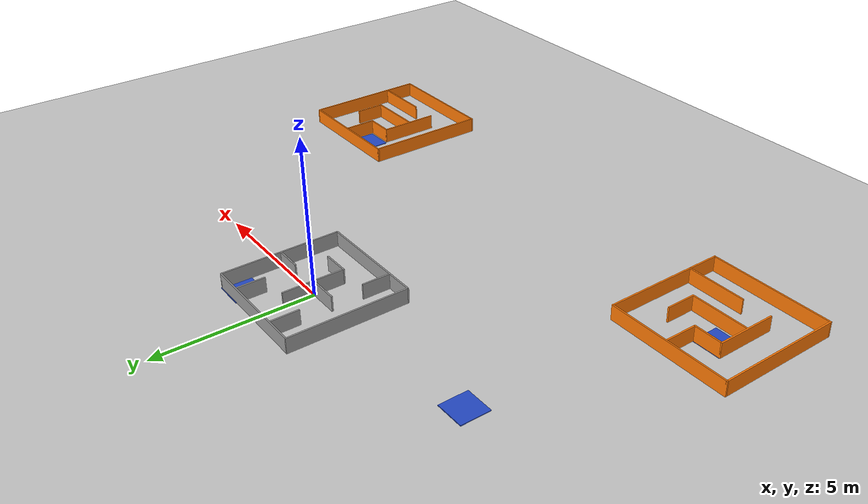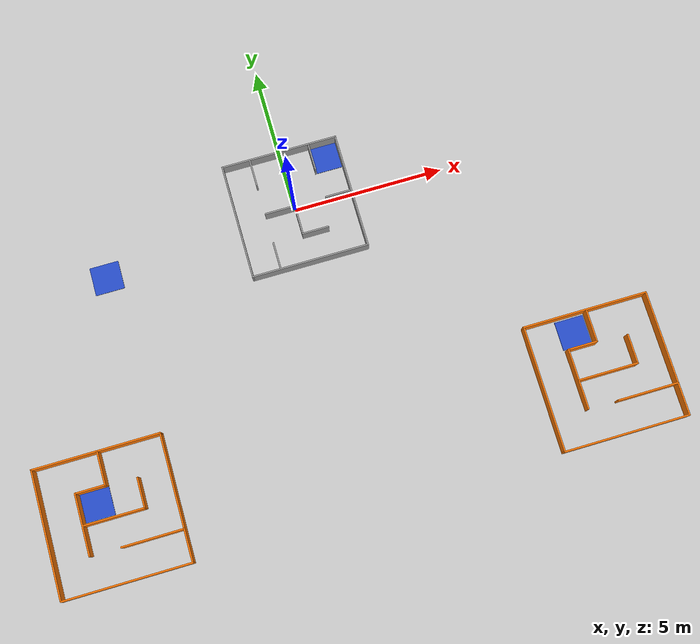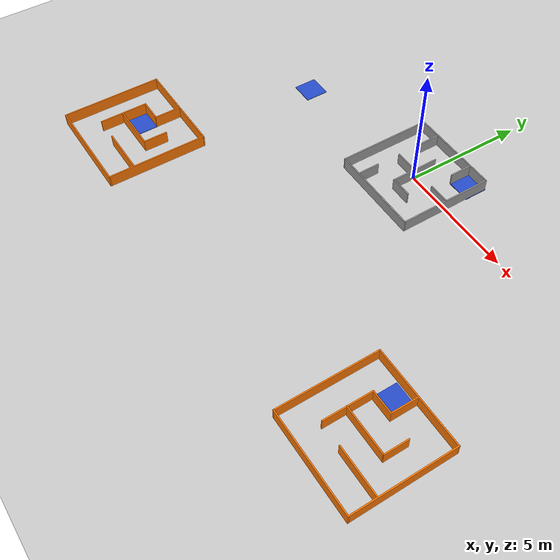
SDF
<sdf version="1.6">
 <world name="default">
  <model name="ground_plane">
   <static>1</static>
   <link name="link">
    <collision name="collision">
     <geometry><plane><normal>0 0 1</normal><size>100 100</size></plane></geometry>
     <surface><friction><ode><mu>100</mu><mu2>50</mu2></ode></friction></surface>
    </collision>
    <visual name="visual">
     <cast_shadows>0</cast_shadows>
     <geometry><plane><normal>0 0 1</normal><size>100 100</size></plane></geometry>
     <material>
      <script><uri>file://media/materials/scripts/gazebo.material</uri><name>Gazebo/Grey</name></script>
     </material>
    </visual>
   </link>
  </model>
  <model name="maze-one_0">
   <link name="Wall_11">
    <pose>0 1.925 0 0 -0 0</pose>
    <visual name="Wall_11_Visual">
     <pose>0 0 0.25 0 -0 0</pose>
     <geometry><box><size>3.9 0.05 0.5</size></box></geometry>
     <material>
      <script><uri>file://media/materials/scripts/gazebo.material</uri><name>Gazebo/Grey</name></script>
      <ambient>1 1 1 1</ambient>
      <diffuse>0.7 0.7 0.7 1</diffuse>
      <specular>0.01 0.01 0.01 1</specular>
      <emissive>0 0 0 1</emissive>
     </material>
    </visual>
    <collision name="Wall_11_Collision">
     <pose>0 0 0.25 0 -0 0</pose>
     <geometry><box><size>3.9 0.05 0.5</size></box></geometry>
     <surface>
      <friction>
       <ode><mu>1</mu><mu2>1</mu2><fdir1>0 0 0</fdir1><slip1>0</slip1><slip2>0</slip2></ode>
       <torsional>
        <coefficient>1</coefficient>
        <patch_radius>0</patch_radius>
        <surface_radius>0</surface_radius>
        <use_patch_radius>1</use_patch_radius>
        <ode><slip>0</slip></ode>
       </torsional>
      </friction>
      <bounce><restitution_coefficient>0</restitution_coefficient><threshold>1e+06</threshold></bounce>
      <contact>
       <collide_without_contact>0</collide_without_contact>
       <collide_without_contact_bitmask>1</collide_without_contact_bitmask>
       <collide_bitmask>1</collide_bitmask>
       <ode>
        <soft_cfm>0</soft_cfm>
        <soft_erp>0.2</soft_erp>
        <kp>1e+13</kp>
        <kd>1</kd>
        <max_vel>0.01</max_vel>
        <min_depth>0</min_depth>
       </ode>
       <bullet>
        <split_impulse>1</split_impulse>
        <split_impulse_penetration_threshold>-0.01</split_impulse_penetration_threshold>
        <soft_cfm>0</soft_cfm>
        <soft_erp>0.2</soft_erp>
        <kp>1e+13</kp>
        <kd>1</kd>
       </bullet>
      </contact>
     </surface>
    </collision>
   </link>
   <link name="Wall_12">
    <pose>1.925 0 0 0 0 -1.5708</pose>
    <visual name="Wall_12_Visual">
     <pose>0 0 0.25 0 -0 0</pose>
     <geometry><box><size>3.9 0.05 0.5</size></box></geometry>
     <material>
      <script><uri>file://media/materials/scripts/gazebo.material</uri><name>Gazebo/Grey</name></script>
      <ambient>1 1 1 1</ambient>
      <diffuse>0.7 0.7 0.7 1</diffuse>
      <specular>0.01 0.01 0.01 1</specular>
      <emissive>0 0 0 1</emissive>
     </material>
    </visual>
    <collision name="Wall_12_Collision">
     <pose>0 0 0.25 0 -0 0</pose>
     <geometry><box><size>3.9 0.05 0.5</size></box></geometry>
     <surface>
      <friction>
       <ode><mu>1</mu><mu2>1</mu2><fdir1>0 0 0</fdir1><slip1>0</slip1><slip2>0</slip2></ode>
       <torsional>
        <coefficient>1</coefficient>
        <patch_radius>0</patch_radius>
        <surface_radius>0</surface_radius>
        <use_patch_radius>1</use_patch_radius>
        <ode><slip>0</slip></ode>
       </torsional>
      </friction>
      <bounce><restitution_coefficient>0</restitution_coefficient><threshold>1e+06</threshold></bounce>
      <contact>
       <collide_without_contact>0</collide_without_contact>
       <collide_without_contact_bitmask>1</collide_without_contact_bitmask>
       <collide_bitmask>1</collide_bitmask>
       <ode>
        <soft_cfm>0</soft_cfm>
        <soft_erp>0.2</soft_erp>
        <kp>1e+13</kp>
        <kd>1</kd>
        <max_vel>0.01</max_vel>
        <min_depth>0</min_depth>
       </ode>
       <bullet>
        <split_impulse>1</split_impulse>
        <split_impulse_penetration_threshold>-0.01</split_impulse_penetration_threshold>
        <soft_cfm>0</soft_cfm>
        <soft_erp>0.2</soft_erp>
        <kp>1e+13</kp>
        <kd>1</kd>
       </bullet>
      </contact>
     </surface>
    </collision>
   </link>
   <link name="Wall_13">
    <pose>0 -1.925 0 0 -0 3.14159</pose>
    <visual name="Wall_13_Visual">
     <pose>0 0 0.25 0 -0 0</pose>
     <geometry><box><size>3.9 0.05 0.5</size></box></geometry>
     <material>
      <script><uri>file://media/materials/scripts/gazebo.material</uri><name>Gazebo/Grey</name></script>
      <ambient>1 1 1 1</ambient>
      <diffuse>0.7 0.7 0.7 1</diffuse>
      <specular>0.01 0.01 0.01 1</specular>
      <emissive>0 0 0 1</emissive>
     </material>
    </visual>
    <collision name="Wall_13_Collision">
     <pose>0 0 0.25 0 -0 0</pose>
     <geometry><box><size>3.9 0.05 0.5</size></box></geometry>
     <surface>
      <friction>
       <ode><mu>1</mu><mu2>1</mu2><fdir1>0 0 0</fdir1><slip1>0</slip1><slip2>0</slip2></ode>
       <torsional>
        <coefficient>1</coefficient>
        <patch_radius>0</patch_radius>
        <surface_radius>0</surface_radius>
        <use_patch_radius>1</use_patch_radius>
        <ode><slip>0</slip></ode>
       </torsional>
      </friction>
      <bounce><restitution_coefficient>0</restitution_coefficient><threshold>1e+06</threshold></bounce>
      <contact>
       <collide_without_contact>0</collide_without_contact>
       <collide_without_contact_bitmask>1</collide_without_contact_bitmask>
       <collide_bitmask>1</collide_bitmask>
       <ode>
        <soft_cfm>0</soft_cfm>
        <soft_erp>0.2</soft_erp>
        <kp>1e+13</kp>
        <kd>1</kd>
        <max_vel>0.01</max_vel>
        <min_depth>0</min_depth>
       </ode>
       <bullet>
        <split_impulse>1</split_impulse>
        <split_impulse_penetration_threshold>-0.01</split_impulse_penetration_threshold>
        <soft_cfm>0</soft_cfm>
        <soft_erp>0.2</soft_erp>
        <kp>1e+13</kp>
        <kd>1</kd>
       </bullet>
      </contact>
     </surface>
    </collision>
   </link>
   <link name="Wall_14">
    <pose>-1.925 0 0 0 -0 1.5708</pose>
    <visual name="Wall_14_Visual">
     <pose>0 0 0.25 0 -0 0</pose>
     <geometry><box><size>3.9 0.05 0.5</size></box></geometry>
     <material>
      <script><uri>file://media/materials/scripts/gazebo.material</uri><name>Gazebo/Grey</name></script>
      <ambient>1 1 1 1</ambient>
      <diffuse>0.7 0.7 0.7 1</diffuse>
      <specular>0.01 0.01 0.01 1</specular>
      <emissive>0 0 0 1</emissive>
     </material>
    </visual>
    <collision name="Wall_14_Collision">
     <pose>0 0 0.25 0 -0 0</pose>
     <geometry><box><size>3.9 0.05 0.5</size></box></geometry>
     <surface>
      <friction>
       <ode><mu>1</mu><mu2>1</mu2><fdir1>0 0 0</fdir1><slip1>0</slip1><slip2>0</slip2></ode>
       <torsional>
        <coefficient>1</coefficient>
        <patch_radius>0</patch_radius>
        <surface_radius>0</surface_radius>
        <use_patch_radius>1</use_patch_radius>
        <ode><slip>0</slip></ode>
       </torsional>
      </friction>
      <bounce><restitution_coefficient>0</restitution_coefficient><threshold>1e+06</threshold></bounce>
      <contact>
       <collide_without_contact>0</collide_without_contact>
       <collide_without_contact_bitmask>1</collide_without_contact_bitmask>
       <collide_bitmask>1</collide_bitmask>
       <ode>
        <soft_cfm>0</soft_cfm>
        <soft_erp>0.2</soft_erp>
        <kp>1e+13</kp>
        <kd>1</kd>
        <max_vel>0.01</max_vel>
        <min_depth>0</min_depth>
       </ode>
       <bullet>
        <split_impulse>1</split_impulse>
        <split_impulse_penetration_threshold>-0.01</split_impulse_penetration_threshold>
        <soft_cfm>0</soft_cfm>
        <soft_erp>0.2</soft_erp>
        <kp>1e+13</kp>
        <kd>1</kd>
       </bullet>
      </contact>
     </surface>
    </collision>
   </link>
   <link name="Wall_27">
    <pose>0.996 1.4547 0 0 0 -1.5708</pose>
    <visual name="Wall_27_Visual">
     <pose>0 0 0.25 0 -0 0</pose>
     <geometry><box><size>0.900337 0.05 0.5</size></box></geometry>
     <material>
      <script><uri>file://media/materials/scripts/gazebo.material</uri><name>Gazebo/Grey</name></script>
      <ambient>1 1 1 1</ambient>
      <diffuse>0.7 0.7 0.7 1</diffuse>
      <specular>0.01 0.01 0.01 1</specular>
      <emissive>0 0 0 1</emissive>
     </material>
    </visual>
    <collision name="Wall_27_Collision">
     <pose>0 0 0.25 0 -0 0</pose>
     <geometry><box><size>0.900337 0.05 0.5</size></box></geometry>
     <surface>
      <friction>
       <ode><mu>1</mu><mu2>1</mu2><fdir1>0 0 0</fdir1><slip1>0</slip1><slip2>0</slip2></ode>
       <torsional>
        <coefficient>1</coefficient>
        <patch_radius>0</patch_radius>
        <surface_radius>0</surface_radius>
        <use_patch_radius>1</use_patch_radius>
        <ode><slip>0</slip></ode>
       </torsional>
      </friction>
      <bounce><restitution_coefficient>0</restitution_coefficient><threshold>1e+06</threshold></bounce>
      <contact>
       <collide_without_contact>0</collide_without_contact>
       <collide_without_contact_bitmask>1</collide_without_contact_bitmask>
       <collide_bitmask>1</collide_bitmask>
       <ode>
        <soft_cfm>0</soft_cfm>
        <soft_erp>0.2</soft_erp>
        <kp>1e+13</kp>
        <kd>1</kd>
        <max_vel>0.01</max_vel>
        <min_depth>0</min_depth>
       </ode>
       <bullet>
        <split_impulse>1</split_impulse>
        <split_impulse_penetration_threshold>-0.01</split_impulse_penetration_threshold>
        <soft_cfm>0</soft_cfm>
        <soft_erp>0.2</soft_erp>
        <kp>1e+13</kp>
        <kd>1</kd>
       </bullet>
      </contact>
     </surface>
    </collision>
   </link>
   <link name="Wall_30">
    <pose>-1.0002 1.4523 0 0 0 -1.5708</pose>
    <visual name="Wall_30_Visual">
     <pose>0 0 0.25 0 -0 0</pose>
     <geometry><box><size>0.900217 0.05 0.5</size></box></geometry>
     <material>
      <script><uri>file://media/materials/scripts/gazebo.material</uri><name>Gazebo/Grey</name></script>
      <ambient>1 1 1 1</ambient>
      <diffuse>0.7 0.7 0.7 1</diffuse>
      <specular>0.01 0.01 0.01 1</specular>
      <emissive>0 0 0 1</emissive>
     </material>
    </visual>
    <collision name="Wall_30_Collision">
     <pose>0 0 0.25 0 -0 0</pose>
     <geometry><box><size>0.900217 0.05 0.5</size></box></geometry>
     <surface>
      <friction>
       <ode><mu>1</mu><mu2>1</mu2><fdir1>0 0 0</fdir1><slip1>0</slip1><slip2>0</slip2></ode>
       <torsional>
        <coefficient>1</coefficient>
        <patch_radius>0</patch_radius>
        <surface_radius>0</surface_radius>
        <use_patch_radius>1</use_patch_radius>
        <ode><slip>0</slip></ode>
       </torsional>
      </friction>
      <bounce><restitution_coefficient>0</restitution_coefficient><threshold>1e+06</threshold></bounce>
      <contact>
       <collide_without_contact>0</collide_without_contact>
       <collide_without_contact_bitmask>1</collide_without_contact_bitmask>
       <collide_bitmask>1</collide_bitmask>
       <ode>
        <soft_cfm>0</soft_cfm>
        <soft_erp>0.2</soft_erp>
        <kp>1e+13</kp>
        <kd>1</kd>
        <max_vel>0.01</max_vel>
        <min_depth>0</min_depth>
       </ode>
       <bullet>
        <split_impulse>1</split_impulse>
        <split_impulse_penetration_threshold>-0.01</split_impulse_penetration_threshold>
        <soft_cfm>0</soft_cfm>
        <soft_erp>0.2</soft_erp>
        <kp>1e+13</kp>
        <kd>1</kd>
       </bullet>
      </contact>
     </surface>
    </collision>
   </link>
   <link name="Wall_36">
    <pose>1.48944 0.002482 0 0 -0 3.14159</pose>
    <visual name="Wall_36_Visual">
     <pose>0 0 0.25 0 -0 0</pose>
     <geometry><box><size>0.9 0.05 0.5</size></box></geometry>
     <material>
      <script><uri>file://media/materials/scripts/gazebo.material</uri><name>Gazebo/Grey</name></script>
      <ambient>1 1 1 1</ambient>
      <diffuse>0.7 0.7 0.7 1</diffuse>
      <specular>0.01 0.01 0.01 1</specular>
      <emissive>0 0 0 1</emissive>
     </material>
    </visual>
    <collision name="Wall_36_Collision">
     <pose>0 0 0.25 0 -0 0</pose>
     <geometry><box><size>0.9 0.05 0.5</size></box></geometry>
     <surface>
      <friction>
       <ode><mu>1</mu><mu2>1</mu2><fdir1>0 0 0</fdir1><slip1>0</slip1><slip2>0</slip2></ode>
       <torsional>
        <coefficient>1</coefficient>
        <patch_radius>0</patch_radius>
        <surface_radius>0</surface_radius>
        <use_patch_radius>1</use_patch_radius>
        <ode><slip>0</slip></ode>
       </torsional>
      </friction>
      <bounce><restitution_coefficient>0</restitution_coefficient><threshold>1e+06</threshold></bounce>
      <contact>
       <collide_without_contact>0</collide_without_contact>
       <collide_without_contact_bitmask>1</collide_without_contact_bitmask>
       <collide_bitmask>1</collide_bitmask>
       <ode>
        <soft_cfm>0</soft_cfm>
        <soft_erp>0.2</soft_erp>
        <kp>1e+13</kp>
        <kd>1</kd>
        <max_vel>0.01</max_vel>
        <min_depth>0</min_depth>
       </ode>
       <bullet>
        <split_impulse>1</split_impulse>
        <split_impulse_penetration_threshold>-0.01</split_impulse_penetration_threshold>
        <soft_cfm>0</soft_cfm>
        <soft_erp>0.2</soft_erp>
        <kp>1e+13</kp>
        <kd>1</kd>
       </bullet>
      </contact>
     </surface>
    </collision>
   </link>
   <link name="Wall_40">
    <pose>-0.997417 -1.45292 0 0 0 -1.5708</pose>
    <visual name="Wall_40_Visual">
     <pose>0 0 0.25 0 -0 0</pose>
     <geometry><box><size>0.899931 0.05 0.5</size></box></geometry>
     <material>
      <script><uri>file://media/materials/scripts/gazebo.material</uri><name>Gazebo/Grey</name></script>
      <ambient>1 1 1 1</ambient>
      <diffuse>0.7 0.7 0.7 1</diffuse>
      <specular>0.01 0.01 0.01 1</specular>
      <emissive>0 0 0 1</emissive>
     </material>
    </visual>
    <collision name="Wall_40_Collision">
     <pose>0 0 0.25 0 -0 0</pose>
     <geometry><box><size>0.899931 0.05 0.5</size></box></geometry>
     <surface>
      <friction>
       <ode><mu>1</mu><mu2>1</mu2><fdir1>0 0 0</fdir1><slip1>0</slip1><slip2>0</slip2></ode>
       <torsional>
        <coefficient>1</coefficient>
        <patch_radius>0</patch_radius>
        <surface_radius>0</surface_radius>
        <use_patch_radius>1</use_patch_radius>
        <ode><slip>0</slip></ode>
       </torsional>
      </friction>
      <bounce><restitution_coefficient>0</restitution_coefficient><threshold>1e+06</threshold></bounce>
      <contact>
       <collide_without_contact>0</collide_without_contact>
       <collide_without_contact_bitmask>1</collide_without_contact_bitmask>
       <collide_bitmask>1</collide_bitmask>
       <ode>
        <soft_cfm>0</soft_cfm>
        <soft_erp>0.2</soft_erp>
        <kp>1e+13</kp>
        <kd>1</kd>
        <max_vel>0.01</max_vel>
        <min_depth>0</min_depth>
       </ode>
       <bullet>
        <split_impulse>1</split_impulse>
        <split_impulse_penetration_threshold>-0.01</split_impulse_penetration_threshold>
        <soft_cfm>0</soft_cfm>
        <soft_erp>0.2</soft_erp>
        <kp>1e+13</kp>
        <kd>1</kd>
       </bullet>
      </contact>
     </surface>
    </collision>
   </link>
   <link name="Wall_43">
    <pose>-0.496076 -0.00777 0 0 -0 3.14159</pose>
    <inertial>
     <inertia><ixx>nan</ixx><ixy>0</ixy><ixz>0</ixz><iyy>nan</iyy><iyz>0</iyz><izz>nan</izz></inertia>
     <mass>0</mass>
    </inertial>
    <visual name="Wall_43_Visual">
     <pose>0 0 0.25 0 -0 0</pose>
     <geometry><box><size>1.0129 0.05 0.5</size></box></geometry>
     <material>
      <script><uri>file://media/materials/scripts/gazebo.material</uri><name>Gazebo/Grey</name></script>
      <ambient>1 1 1 1</ambient>
      <diffuse>0.7 0.7 0.7 1</diffuse>
      <specular>0.01 0.01 0.01 1</specular>
      <emissive>0 0 0 1</emissive>
     </material>
    </visual>
    <collision name="Wall_43_Collision">
     <pose>0 0 0.25 0 -0 0</pose>
     <geometry><box><size>1.0129 0.05 0.5</size></box></geometry>
     <surface>
      <friction>
       <ode><mu>1</mu><mu2>1</mu2><fdir1>0 0 0</fdir1><slip1>0</slip1><slip2>0</slip2></ode>
       <torsional>
        <coefficient>1</coefficient>
        <patch_radius>0</patch_radius>
        <surface_radius>0</surface_radius>
        <use_patch_radius>1</use_patch_radius>
        <ode><slip>0</slip></ode>
       </torsional>
      </friction>
      <bounce><restitution_coefficient>0</restitution_coefficient><threshold>1e+06</threshold></bounce>
      <contact>
       <collide_without_contact>0</collide_without_contact>
       <collide_without_contact_bitmask>1</collide_without_contact_bitmask>
       <collide_bitmask>1</collide_bitmask>
       <ode>
        <soft_cfm>0</soft_cfm>
        <soft_erp>0.2</soft_erp>
        <kp>1e+13</kp>
        <kd>1</kd>
        <max_vel>0.01</max_vel>
        <min_depth>0</min_depth>
       </ode>
       <bullet>
        <split_impulse>1</split_impulse>
        <split_impulse_penetration_threshold>-0.01</split_impulse_penetration_threshold>
        <soft_cfm>0</soft_cfm>
        <soft_erp>0.2</soft_erp>
        <kp>1e+13</kp>
        <kd>1</kd>
       </bullet>
      </contact>
     </surface>
    </collision>
   </link>
   <link name="Wall_45">
    <pose>0.004129 0.508535 0 0 -0 1.5708</pose>
    <inertial>
     <mass>1.05671</mass>
     <inertia><ixx>1.05671</ixx><ixy>0</ixy><ixz>0</ixz><iyy>1.11833</iyy><iyz>0</iyz><izz>1.11833</izz></inertia>
    </inertial>
    <visual name="Wall_45_Visual">
     <pose>0 0 0.25 0 -0 0</pose>
     <geometry><box><size>0.990985 0.05 0.5</size></box></geometry>
     <material>
      <script><uri>file://media/materials/scripts/gazebo.material</uri><name>Gazebo/Grey</name></script>
      <ambient>1 1 1 1</ambient>
      <diffuse>0.7 0.7 0.7 1</diffuse>
      <specular>0.01 0.01 0.01 1</specular>
      <emissive>0 0 0 1</emissive>
      <shader type="vertex"><normal_map>__default__</normal_map></shader>
     </material>
    </visual>
    <collision name="Wall_45_Collision">
     <pose>0 0 0.25 0 -0 0</pose>
     <geometry><box><size>0.990985 0.05 0.5</size></box></geometry>
     <surface>
      <friction>
       <ode><mu>1</mu><mu2>1</mu2><fdir1>0 0 0</fdir1><slip1>0</slip1><slip2>0</slip2></ode>
       <torsional>
        <coefficient>1</coefficient>
        <patch_radius>0</patch_radius>
        <surface_radius>0</surface_radius>
        <use_patch_radius>1</use_patch_radius>
        <ode><slip>0</slip></ode>
       </torsional>
      </friction>
      <bounce><restitution_coefficient>0</restitution_coefficient><threshold>1e+06</threshold></bounce>
      <contact>
       <collide_without_contact>0</collide_without_contact>
       <collide_without_contact_bitmask>1</collide_without_contact_bitmask>
       <collide_bitmask>1</collide_bitmask>
       <ode>
        <soft_cfm>0</soft_cfm>
        <soft_erp>0.2</soft_erp>
        <kp>1e+13</kp>
        <kd>1</kd>
        <max_vel>0.01</max_vel>
        <min_depth>0</min_depth>
       </ode>
       <bullet>
        <split_impulse>1</split_impulse>
        <split_impulse_penetration_threshold>-0.01</split_impulse_penetration_threshold>
        <soft_cfm>0</soft_cfm>
        <soft_erp>0.2</soft_erp>
        <kp>1e+13</kp>
        <kd>1</kd>
       </bullet>
      </contact>
     </surface>
    </collision>
   </link>
   <link name="Wall_47">
    <pose>0.003706 -0.469247 0 0 0 -1.5708</pose>
    <inertial>
     <inertia><ixx>nan</ixx><ixy>0</ixy><ixz>0</ixz><iyy>nan</iyy><iyz>0</iyz><izz>nan</izz></inertia>
     <mass>0</mass>
    </inertial>
    <visual name="Wall_47_Visual">
     <pose>0 0 0.25 0 -0 0</pose>
     <geometry><box><size>0.992125 0.05 0.5</size></box></geometry>
     <material>
      <script><uri>file://media/materials/scripts/gazebo.material</uri><name>Gazebo/Grey</name></script>
      <ambient>1 1 1 1</ambient>
      <diffuse>0.7 0.7 0.7 1</diffuse>
      <specular>0.01 0.01 0.01 1</specular>
      <emissive>0 0 0 1</emissive>
     </material>
    </visual>
    <collision name="Wall_47_Collision">
     <pose>0 0 0.25 0 -0 0</pose>
     <geometry><box><size>0.992125 0.05 0.5</size></box></geometry>
     <surface>
      <friction>
       <ode><mu>1</mu><mu2>1</mu2><fdir1>0 0 0</fdir1><slip1>0</slip1><slip2>0</slip2></ode>
       <torsional>
        <coefficient>1</coefficient>
        <patch_radius>0</patch_radius>
        <surface_radius>0</surface_radius>
        <use_patch_radius>1</use_patch_radius>
        <ode><slip>0</slip></ode>
       </torsional>
      </friction>
      <bounce><restitution_coefficient>0</restitution_coefficient><threshold>1e+06</threshold></bounce>
      <contact>
       <collide_without_contact>0</collide_without_contact>
       <collide_without_contact_bitmask>1</collide_without_contact_bitmask>
       <collide_bitmask>1</collide_bitmask>
       <ode>
        <soft_cfm>0</soft_cfm>
        <soft_erp>0.2</soft_erp>
        <kp>1e+13</kp>
        <kd>1</kd>
        <max_vel>0.01</max_vel>
        <min_depth>0</min_depth>
       </ode>
       <bullet>
        <split_impulse>1</split_impulse>
        <split_impulse_penetration_threshold>-0.01</split_impulse_penetration_threshold>
        <soft_cfm>0</soft_cfm>
        <soft_erp>0.2</soft_erp>
        <kp>1e+13</kp>
        <kd>1</kd>
       </bullet>
      </contact>
     </surface>
    </collision>
   </link>
   <link name="Wall_49">
    <pose>0.431063 -0.987023 0 0 -0 0</pose>
    <visual name="Wall_49_Visual">
     <pose>0 0 0.25 0 -0 0</pose>
     <geometry><box><size>0.900077 0.05 0.5</size></box></geometry>
     <material>
      <script><uri>file://media/materials/scripts/gazebo.material</uri><name>Gazebo/Grey</name></script>
      <ambient>1 1 1 1</ambient>
      <diffuse>0.7 0.7 0.7 1</diffuse>
      <specular>0.01 0.01 0.01 1</specular>
      <emissive>0 0 0 1</emissive>
     </material>
    </visual>
    <collision name="Wall_49_Collision">
     <pose>0 0 0.25 0 -0 0</pose>
     <geometry><box><size>0.900077 0.05 0.5</size></box></geometry>
     <surface>
      <friction>
       <ode><mu>1</mu><mu2>1</mu2><fdir1>0 0 0</fdir1><slip1>0</slip1><slip2>0</slip2></ode>
       <torsional>
        <coefficient>1</coefficient>
        <patch_radius>0</patch_radius>
        <surface_radius>0</surface_radius>
        <use_patch_radius>1</use_patch_radius>
        <ode><slip>0</slip></ode>
       </torsional>
      </friction>
      <bounce><restitution_coefficient>0</restitution_coefficient><threshold>1e+06</threshold></bounce>
      <contact>
       <collide_without_contact>0</collide_without_contact>
       <collide_without_contact_bitmask>1</collide_without_contact_bitmask>
       <collide_bitmask>1</collide_bitmask>
       <ode>
        <soft_cfm>0</soft_cfm>
        <soft_erp>0.2</soft_erp>
        <kp>1e+13</kp>
        <kd>1</kd>
        <max_vel>0.01</max_vel>
        <min_depth>0</min_depth>
       </ode>
       <bullet>
        <split_impulse>1</split_impulse>
        <split_impulse_penetration_threshold>-0.01</split_impulse_penetration_threshold>
        <soft_cfm>0</soft_cfm>
        <soft_erp>0.2</soft_erp>
        <kp>1e+13</kp>
        <kd>1</kd>
       </bullet>
      </contact>
     </surface>
    </collision>
   </link>
   <static>1</static>
  </model>
  <model name="maze-three-four">
   <pose>7.9579 -7.99361 0 0 -0 0</pose>
   <link name="Wall_72">
    <collision name="Wall_72_Collision">
     <geometry><box><size>4.15039 0.05 0.5</size></box></geometry>
     <pose>0 0 0.25 0 -0 0</pose>
    </collision>
    <visual name="Wall_72_Visual">
     <pose>0 0 0.25 0 -0 0</pose>
     <geometry><box><size>4.15039 0.05 0.5</size></box></geometry>
     <material>
      <script><uri>file://media/materials/scripts/gazebo.material</uri><name>Gazebo/Grey</name></script>
      <ambient>0.996078 0.47451 0.0196078 1</ambient>
     </material>
    </visual>
    <pose>0 2.05 0 0 -0 0</pose>
   </link>
   <link name="Wall_74">
    <collision name="Wall_74_Collision">
     <geometry><box><size>4.15 0.05 0.5</size></box></geometry>
     <pose>0 0 0.25 0 -0 0</pose>
    </collision>
    <visual name="Wall_74_Visual">
     <pose>0 0 0.25 0 -0 0</pose>
     <geometry><box><size>4.15 0.05 0.5</size></box></geometry>
     <material>
      <script><uri>file://media/materials/scripts/gazebo.material</uri><name>Gazebo/Grey</name></script>
      <ambient>0.996078 0.47451 0.0196078 1</ambient>
     </material>
    </visual>
    <pose>2.05 0 0 0 0 -1.5708</pose>
   </link>
   <link name="Wall_75">
    <collision name="Wall_75_Collision">
     <geometry><box><size>4.15 0.05 0.5</size></box></geometry>
     <pose>0 0 0.25 0 -0 0</pose>
    </collision>
    <visual name="Wall_75_Visual">
     <pose>0 0 0.25 0 -0 0</pose>
     <geometry><box><size>4.15 0.05 0.5</size></box></geometry>
     <material>
      <script><uri>file://media/materials/scripts/gazebo.material</uri><name>Gazebo/Grey</name></script>
      <ambient>0.996078 0.47451 0.0196078 1</ambient>
     </material>
    </visual>
    <pose>0 -2.05 0 0 -0 3.14159</pose>
   </link>
   <link name="Wall_76">
    <collision name="Wall_76_Collision">
     <geometry><box><size>4.15 0.05 0.5</size></box></geometry>
     <pose>0 0 0.25 0 -0 0</pose>
    </collision>
    <visual name="Wall_76_Visual">
     <pose>0 0 0.25 0 -0 0</pose>
     <geometry><box><size>4.15 0.05 0.5</size></box></geometry>
     <material>
      <script><uri>file://media/materials/scripts/gazebo.material</uri><name>Gazebo/Grey</name></script>
      <ambient>0.996078 0.47451 0.0196078 1</ambient>
     </material>
    </visual>
    <pose>-2.05 0 0 0 -0 1.5708</pose>
   </link>
   <link name="Wall_81">
    <collision name="Wall_81_Collision">
     <geometry><box><size>2 0.05 0.5</size></box></geometry>
     <pose>0 0 0.25 0 -0 0</pose>
    </collision>
    <visual name="Wall_81_Visual">
     <pose>0 0 0.25 0 -0 0</pose>
     <geometry><box><size>2 0.05 0.5</size></box></geometry>
     <material>
      <script><uri>file://media/materials/scripts/gazebo.material</uri><name>Gazebo/Grey</name></script>
      <ambient>0.996078 0.47451 0.0196078 1</ambient>
     </material>
    </visual>
    <pose>1.058 -0.998 0 0 -0 3.14159</pose>
   </link>
   <link name="Wall_86">
    <collision name="Wall_86_Collision">
     <geometry><box><size>2 0.05 0.5</size></box></geometry>
     <pose>0 0 0.25 0 -0 0</pose>
    </collision>
    <visual name="Wall_86_Visual">
     <pose>0 0 0.25 0 -0 0</pose>
     <geometry><box><size>2 0.05 0.5</size></box></geometry>
     <material>
      <script><uri>file://media/materials/scripts/gazebo.material</uri><name>Gazebo/Grey</name></script>
      <ambient>0.996078 0.47451 0.0196078 1</ambient>
     </material>
    </visual>
    <pose>-0.915 -0.005 0 0 -0 1.5708</pose>
   </link>
   <link name="Wall_88">
    <collision name="Wall_88_Collision">
     <geometry><box><size>1 0.05 0.5</size></box></geometry>
     <pose>0 0 0.25 0 -0 0</pose>
    </collision>
    <visual name="Wall_88_Visual">
     <pose>0 0 0.25 0 -0 0</pose>
     <geometry><box><size>1 0.05 0.5</size></box></geometry>
     <material>
      <script><uri>file://media/materials/scripts/gazebo.material</uri><name>Gazebo/Grey</name></script>
      <ambient>0.996078 0.47451 0.0196078 1</ambient>
     </material>
    </visual>
    <pose>-0.44 0.97 0 0 -0 0</pose>
   </link>
   <link name="Wall_90">
    <collision name="Wall_90_Collision">
     <geometry><box><size>1.1 0.05 0.5</size></box></geometry>
     <pose>0 0 0.25 0 -0 0</pose>
    </collision>
    <visual name="Wall_90_Visual">
     <pose>0 0 0.25 0 -0 0</pose>
     <geometry><box><size>1.1 0.05 0.5</size></box></geometry>
     <material>
      <script><uri>file://media/materials/scripts/gazebo.material</uri><name>Gazebo/Grey</name></script>
      <ambient>0.996078 0.47451 0.0196078 1</ambient>
     </material>
    </visual>
    <pose>0.035 1.495 0 0 -0 1.5708</pose>
   </link>
   <link name="Wall_93">
    <collision name="Wall_93_Collision">
     <geometry><box><size>2 0.05 0.5</size></box></geometry>
     <pose>0 0 0.25 0 -0 0</pose>
    </collision>
    <visual name="Wall_93_Visual">
     <pose>0 0 0.25 0 -0 0</pose>
     <geometry><box><size>2 0.05 0.5</size></box></geometry>
     <material>
      <script><uri>file://media/materials/scripts/gazebo.material</uri><name>Gazebo/Grey</name></script>
      <ambient>0.996078 0.47451 0.0196078 1</ambient>
     </material>
    </visual>
    <pose>0.068 -0.048 0 0 -0 0</pose>
   </link>
   <link name="Wall_95">
    <collision name="Wall_95_Collision">
     <geometry><box><size>1 0.05 0.5</size></box></geometry>
     <pose>0 0 0.25 0 -0 0</pose>
    </collision>
    <visual name="Wall_95_Visual">
     <pose>0 0 0.25 0 -0 0</pose>
     <geometry><box><size>1 0.05 0.5</size></box></geometry>
     <material>
      <script><uri>file://media/materials/scripts/gazebo.material</uri><name>Gazebo/Grey</name></script>
      <ambient>0.996078 0.47451 0.0196078 1</ambient>
     </material>
    </visual>
    <pose>1.043 0.427 0 0 -0 1.5708</pose>
   </link>
   <static>1</static>
  </model>
  <model name="maze-three-four_0">
   <pose>-8.05 -8 0 0 -0 0</pose>
   <link name="Wall_72">
    <collision name="Wall_72_Collision">
     <geometry><box><size>4.15039 0.05 0.5</size></box></geometry>
     <pose>0 0 0.25 0 -0 0</pose>
    </collision>
    <visual name="Wall_72_Visual">
     <pose>0 0 0.25 0 -0 0</pose>
     <geometry><box><size>4.15039 0.05 0.5</size></box></geometry>
     <material>
      <script><uri>file://media/materials/scripts/gazebo.material</uri><name>Gazebo/Grey</name></script>
      <ambient>0.996078 0.47451 0.0196078 1</ambient>
     </material>
    </visual>
    <pose>0 2.05 0 0 -0 0</pose>
   </link>
   <link name="Wall_74">
    <collision name="Wall_74_Collision">
     <geometry><box><size>4.15 0.05 0.5</size></box></geometry>
     <pose>0 0 0.25 0 -0 0</pose>
    </collision>
    <visual name="Wall_74_Visual">
     <pose>0 0 0.25 0 -0 0</pose>
     <geometry><box><size>4.15 0.05 0.5</size></box></geometry>
     <material>
      <script><uri>file://media/materials/scripts/gazebo.material</uri><name>Gazebo/Grey</name></script>
      <ambient>0.996078 0.47451 0.0196078 1</ambient>
     </material>
    </visual>
    <pose>2.05 0 0 0 0 -1.5708</pose>
   </link>
   <link name="Wall_75">
    <collision name="Wall_75_Collision">
     <geometry><box><size>4.15 0.05 0.5</size></box></geometry>
     <pose>0 0 0.25 0 -0 0</pose>
    </collision>
    <visual name="Wall_75_Visual">
     <pose>0 0 0.25 0 -0 0</pose>
     <geometry><box><size>4.15 0.05 0.5</size></box></geometry>
     <material>
      <script><uri>file://media/materials/scripts/gazebo.material</uri><name>Gazebo/Grey</name></script>
      <ambient>0.996078 0.47451 0.0196078 1</ambient>
     </material>
    </visual>
    <pose>0 -2.05 0 0 -0 3.14159</pose>
   </link>
   <link name="Wall_76">
    <collision name="Wall_76_Collision">
     <geometry><box><size>4.15 0.05 0.5</size></box></geometry>
     <pose>0 0 0.25 0 -0 0</pose>
    </collision>
    <visual name="Wall_76_Visual">
     <pose>0 0 0.25 0 -0 0</pose>
     <geometry><box><size>4.15 0.05 0.5</size></box></geometry>
     <material>
      <script><uri>file://media/materials/scripts/gazebo.material</uri><name>Gazebo/Grey</name></script>
      <ambient>0.996078 0.47451 0.0196078 1</ambient>
     </material>
    </visual>
    <pose>-2.05 0 0 0 -0 1.5708</pose>
   </link>
   <link name="Wall_81">
    <collision name="Wall_81_Collision">
     <geometry><box><size>2 0.05 0.5</size></box></geometry>
     <pose>0 0 0.25 0 -0 0</pose>
    </collision>
    <visual name="Wall_81_Visual">
     <pose>0 0 0.25 0 -0 0</pose>
     <geometry><box><size>2 0.05 0.5</size></box></geometry>
     <material>
      <script><uri>file://media/materials/scripts/gazebo.material</uri><name>Gazebo/Grey</name></script>
      <ambient>0.996078 0.47451 0.0196078 1</ambient>
     </material>
    </visual>
    <pose>1.058 -0.998 0 0 -0 3.14159</pose>
   </link>
   <link name="Wall_86">
    <collision name="Wall_86_Collision">
     <geometry><box><size>2 0.05 0.5</size></box></geometry>
     <pose>0 0 0.25 0 -0 0</pose>
    </collision>
    <visual name="Wall_86_Visual">
     <pose>0 0 0.25 0 -0 0</pose>
     <geometry><box><size>2 0.05 0.5</size></box></geometry>
     <material>
      <script><uri>file://media/materials/scripts/gazebo.material</uri><name>Gazebo/Grey</name></script>
      <ambient>0.996078 0.47451 0.0196078 1</ambient>
     </material>
    </visual>
    <pose>-0.915 -0.005 0 0 -0 1.5708</pose>
   </link>
   <link name="Wall_88">
    <collision name="Wall_88_Collision">
     <geometry><box><size>1 0.05 0.5</size></box></geometry>
     <pose>0 0 0.25 0 -0 0</pose>
    </collision>
    <visual name="Wall_88_Visual">
     <pose>0 0 0.25 0 -0 0</pose>
     <geometry><box><size>1 0.05 0.5</size></box></geometry>
     <material>
      <script><uri>file://media/materials/scripts/gazebo.material</uri><name>Gazebo/Grey</name></script>
      <ambient>0.996078 0.47451 0.0196078 1</ambient>
     </material>
    </visual>
    <pose>-0.44 0.97 0 0 -0 0</pose>
   </link>
   <link name="Wall_90">
    <collision name="Wall_90_Collision">
     <geometry><box><size>1.1 0.05 0.5</size></box></geometry>
     <pose>0 0 0.25 0 -0 0</pose>
    </collision>
    <visual name="Wall_90_Visual">
     <pose>0 0 0.25 0 -0 0</pose>
     <geometry><box><size>1.1 0.05 0.5</size></box></geometry>
     <material>
      <script><uri>file://media/materials/scripts/gazebo.material</uri><name>Gazebo/Grey</name></script>
      <ambient>0.996078 0.47451 0.0196078 1</ambient>
     </material>
    </visual>
    <pose>0.035 1.495 0 0 -0 1.5708</pose>
   </link>
   <link name="Wall_93">
    <collision name="Wall_93_Collision">
     <geometry><box><size>2 0.05 0.5</size></box></geometry>
     <pose>0 0 0.25 0 -0 0</pose>
    </collision>
    <visual name="Wall_93_Visual">
     <pose>0 0 0.25 0 -0 0</pose>
     <geometry><box><size>2 0.05 0.5</size></box></geometry>
     <material>
      <script><uri>file://media/materials/scripts/gazebo.material</uri><name>Gazebo/Grey</name></script>
      <ambient>0.996078 0.47451 0.0196078 1</ambient>
     </material>
    </visual>
    <pose>0.068 -0.048 0 0 -0 0</pose>
   </link>
   <link name="Wall_95">
    <collision name="Wall_95_Collision">
     <geometry><box><size>1 0.05 0.5</size></box></geometry>
     <pose>0 0 0.25 0 -0 0</pose>
    </collision>
    <visual name="Wall_95_Visual">
     <pose>0 0 0.25 0 -0 0</pose>
     <geometry><box><size>1 0.05 0.5</size></box></geometry>
     <material>
      <script><uri>file://media/materials/scripts/gazebo.material</uri><name>Gazebo/Grey</name></script>
      <ambient>0.996078 0.47451 0.0196078 1</ambient>
     </material>
    </visual>
    <pose>1.043 0.427 0 0 -0 1.5708</pose>
   </link>
   <static>1</static>
  </model>
  <model name="goal_sign_0_0">
   <link name="link">
    <pose>0.176513 2.2342 -0.423865 0 -0 0</pose>
    <inertial>
     <mass>0.0466183</mass>
     <inertia>
      <ixx>0.00346603</ixx>
      <ixy>0</ixy>
      <ixz>0</ixz>
      <iyy>0.00355102</iyy>
      <iyz>0</iyz>
      <izz>0.00699622</izz>
     </inertia>
    </inertial>
    <visual name="visual">
     <geometry><box><size>0.954665 0.942957 0.051771</size></box></geometry>
     <material>
      <script><name>Gazebo/Blue</name><uri>file://media/materials/scripts/gazebo.material</uri></script>
      <ambient>0.1 0.1 0.7 1</ambient>
      <diffuse>0.7 0.7 0.7 1</diffuse>
      <specular>0.01 0.01 0.01 1</specular>
      <emissive>0 0 0 1</emissive>
      <shader type="vertex"><normal_map>__default__</normal_map></shader>
     </material>
    </visual>
    <collision name="collision">
     <geometry><box><size>0.954665 0.942957 0.051771</size></box></geometry>
     <surface>
      <friction>
       <ode><mu>1</mu><mu2>1</mu2><fdir1>0 0 0</fdir1><slip1>0</slip1><slip2>0</slip2></ode>
       <torsional>
        <coefficient>1</coefficient>
        <patch_radius>0</patch_radius>
        <surface_radius>0</surface_radius>
        <use_patch_radius>1</use_patch_radius>
        <ode><slip>0</slip></ode>
       </torsional>
      </friction>
      <bounce><restitution_coefficient>0</restitution_coefficient><threshold>1e+06</threshold></bounce>
      <contact>
       <collide_without_contact>0</collide_without_contact>
       <collide_without_contact_bitmask>1</collide_without_contact_bitmask>
       <collide_bitmask>1</collide_bitmask>
       <ode>
        <soft_cfm>0</soft_cfm>
        <soft_erp>0.2</soft_erp>
        <kp>1e+13</kp>
        <kd>1</kd>
        <max_vel>0.01</max_vel>
        <min_depth>0</min_depth>
       </ode>
       <bullet>
        <split_impulse>1</split_impulse>
        <split_impulse_penetration_threshold>-0.01</split_impulse_penetration_threshold>
        <soft_cfm>0</soft_cfm>
        <soft_erp>0.2</soft_erp>
        <kp>1e+13</kp>
        <kd>1</kd>
       </bullet>
      </contact>
     </surface>
    </collision>
   </link>
   <static>1</static>
   <pose>1.31016 -0.741905 0.403407 0 -0 0</pose>
  </model>
  <model name="goal_sign_0_0_clone_0">
   <link name="link">
    <pose>0.176513 2.2342 -0.423865 0 -0 0</pose>
    <inertial>
     <mass>0.0466183</mass>
     <inertia>
      <ixx>0.00346603</ixx>
      <ixy>0</ixy>
      <ixz>0</ixz>
      <iyy>0.00355102</iyy>
      <iyz>0</iyz>
      <izz>0.00699622</izz>
     </inertia>
    </inertial>
    <visual name="visual">
     <geometry><box><size>0.954665 0.942957 0.051771</size></box></geometry>
     <material>
      <script><name>Gazebo/Blue</name><uri>file://media/materials/scripts/gazebo.material</uri></script>
      <ambient>0.1 0.1 0.7 1</ambient>
      <diffuse>0.7 0.7 0.7 1</diffuse>
      <specular>0.01 0.01 0.01 1</specular>
      <emissive>0 0 0 1</emissive>
      <shader type="vertex"><normal_map>__default__</normal_map></shader>
     </material>
    </visual>
    <collision name="collision">
     <geometry><box><size>0.954665 0.942957 0.051771</size></box></geometry>
     <surface>
      <friction>
       <ode><mu>1</mu><mu2>1</mu2><fdir1>0 0 0</fdir1><slip1>0</slip1><slip2>0</slip2></ode>
       <torsional>
        <coefficient>1</coefficient>
        <patch_radius>0</patch_radius>
        <surface_radius>0</surface_radius>
        <use_patch_radius>1</use_patch_radius>
        <ode><slip>0</slip></ode>
       </torsional>
      </friction>
      <bounce><restitution_coefficient>0</restitution_coefficient><threshold>1e+06</threshold></bounce>
      <contact>
       <collide_without_contact>0</collide_without_contact>
       <collide_without_contact_bitmask>1</collide_without_contact_bitmask>
       <collide_bitmask>1</collide_bitmask>
       <ode>
        <soft_cfm>0</soft_cfm>
        <soft_erp>0.2</soft_erp>
        <kp>1e+13</kp>
        <kd>1</kd>
        <max_vel>0.01</max_vel>
        <min_depth>0</min_depth>
       </ode>
       <bullet>
        <split_impulse>1</split_impulse>
        <split_impulse_penetration_threshold>-0.01</split_impulse_penetration_threshold>
        <soft_cfm>0</soft_cfm>
        <soft_erp>0.2</soft_erp>
        <kp>1e+13</kp>
        <kd>1</kd>
       </bullet>
      </contact>
     </surface>
    </collision>
   </link>
   <static>1</static>
   <pose>7.28935 -8.71437 0.403407 0 -0 0</pose>
  </model>
  <model name="goal_sign_0_0_clone_1">
   <link name="link">
    <pose>0.176513 2.2342 -0.423865 0 -0 0</pose>
    <inertial>
     <mass>0.0466183</mass>
     <inertia>
      <ixx>0.00346603</ixx>
      <ixy>0</ixy>
      <ixz>0</ixz>
      <iyy>0.00355102</iyy>
      <iyz>0</iyz>
      <izz>0.00699622</izz>
     </inertia>
    </inertial>
    <visual name="visual">
     <geometry><box><size>0.954665 0.942957 0.051771</size></box></geometry>
     <material>
      <script><name>Gazebo/Blue</name><uri>file://media/materials/scripts/gazebo.material</uri></script>
      <ambient>0.1 0.1 0.7 1</ambient>
      <diffuse>0.7 0.7 0.7 1</diffuse>
      <specular>0.01 0.01 0.01 1</specular>
      <emissive>0 0 0 1</emissive>
      <shader type="vertex"><normal_map>__default__</normal_map></shader>
     </material>
    </visual>
    <collision name="collision">
     <geometry><box><size>0.954665 0.942957 0.051771</size></box></geometry>
     <surface>
      <friction>
       <ode><mu>1</mu><mu2>1</mu2><fdir1>0 0 0</fdir1><slip1>0</slip1><slip2>0</slip2></ode>
       <torsional>
        <coefficient>1</coefficient>
        <patch_radius>0</patch_radius>
        <surface_radius>0</surface_radius>
        <use_patch_radius>1</use_patch_radius>
        <ode><slip>0</slip></ode>
       </torsional>
      </friction>
      <bounce><restitution_coefficient>0</restitution_coefficient><threshold>1e+06</threshold></bounce>
      <contact>
       <collide_without_contact>0</collide_without_contact>
       <collide_without_contact_bitmask>1</collide_without_contact_bitmask>
       <collide_bitmask>1</collide_bitmask>
       <ode>
        <soft_cfm>0</soft_cfm>
        <soft_erp>0.2</soft_erp>
        <kp>1e+13</kp>
        <kd>1</kd>
        <max_vel>0.01</max_vel>
        <min_depth>0</min_depth>
       </ode>
       <bullet>
        <split_impulse>1</split_impulse>
        <split_impulse_penetration_threshold>-0.01</split_impulse_penetration_threshold>
        <soft_cfm>0</soft_cfm>
        <soft_erp>0.2</soft_erp>
        <kp>1e+13</kp>
        <kd>1</kd>
       </bullet>
      </contact>
     </surface>
    </collision>
   </link>
   <static>1</static>
   <pose>-8.65492 -9.71853 0.403407 0 -0 0</pose>
  </model>
  <model name="goal_sign_0_0_clone_3">
   <link name="link">
    <pose>0.176513 2.2342 -0.423865 0 -0 0</pose>
    <inertial>
     <mass>0.0466183</mass>
     <inertia>
      <ixx>0.00346603</ixx>
      <ixy>0</ixy>
      <ixz>0</ixz>
      <iyy>0.00355102</iyy>
      <iyz>0</iyz>
      <izz>0.00699622</izz>
     </inertia>
    </inertial>
    <visual name="visual">
     <geometry><box><size>0.954665 0.942957 0.051771</size></box></geometry>
     <material>
      <script><name>Gazebo/Blue</name><uri>file://media/materials/scripts/gazebo.material</uri></script>
      <ambient>0.1 0.1 0.7 1</ambient>
      <diffuse>0.7 0.7 0.7 1</diffuse>
      <specular>0.01 0.01 0.01 1</specular>
      <emissive>0 0 0 1</emissive>
      <shader type="vertex"><normal_map>__default__</normal_map></shader>
     </material>
    </visual>
    <collision name="collision">
     <geometry><box><size>0.954665 0.942957 0.051771</size></box></geometry>
     <surface>
      <friction>
       <ode><mu>1</mu><mu2>1</mu2><fdir1>0 0 0</fdir1><slip1>0</slip1><slip2>0</slip2></ode>
       <torsional>
        <coefficient>1</coefficient>
        <patch_radius>0</patch_radius>
        <surface_radius>0</surface_radius>
        <use_patch_radius>1</use_patch_radius>
        <ode><slip>0</slip></ode>
       </torsional>
      </friction>
      <bounce><restitution_coefficient>0</restitution_coefficient><threshold>1e+06</threshold></bounce>
      <contact>
       <collide_without_contact>0</collide_without_contact>
       <collide_without_contact_bitmask>1</collide_without_contact_bitmask>
       <collide_bitmask>1</collide_bitmask>
       <ode>
        <soft_cfm>0</soft_cfm>
        <soft_erp>0.2</soft_erp>
        <kp>1e+13</kp>
        <kd>1</kd>
        <max_vel>0.01</max_vel>
        <min_depth>0</min_depth>
       </ode>
       <bullet>
        <split_impulse>1</split_impulse>
        <split_impulse_penetration_threshold>-0.01</split_impulse_penetration_threshold>
        <soft_cfm>0</soft_cfm>
        <soft_erp>0.2</soft_erp>
        <kp>1e+13</kp>
        <kd>1</kd>
       </bullet>
      </contact>
     </surface>
    </collision>
   </link>
   <static>1</static>
   <pose>-6.67448 -2.74654 0.403407 0 -0 0</pose>
  </model>
 </world>
</sdf>
